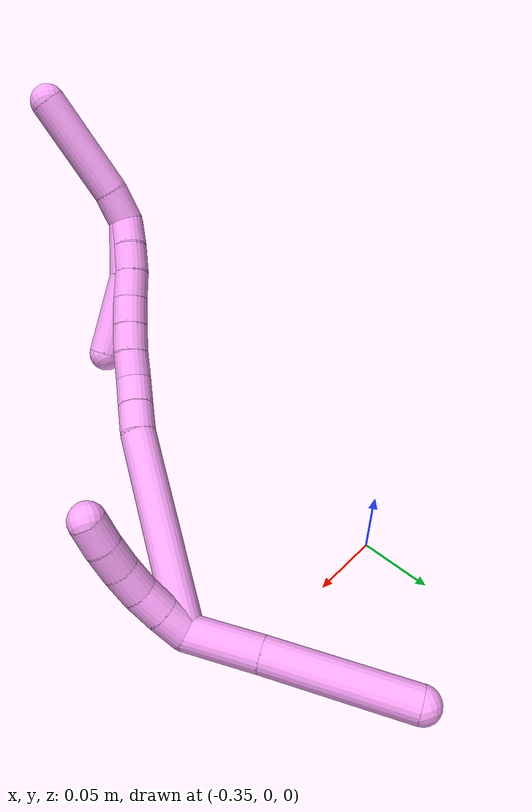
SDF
<sdf version="1.7">
 <world name="default">
  <model name="4">
   <static>0</static>
   <link name="4">
    <collision name="collision-cylinder-e_1_2_8">
     <pose>0.007381 0.019603 -0.013996 -2.19084 0.297329 -0.566277</pose>
     <geometry><cylinder><radius>0.0125</radius><length>0.050385</length></cylinder></geometry>
     <surface>
      <friction><ode><mu>1.16</mu><mu2>1.16</mu2><slip1>0</slip1><slip2>0</slip2></ode></friction>
      <contact><ode><kp>1e+06</kp><kd>1</kd><max_vel>0</max_vel><min_depth>0.001</min_depth></ode></contact>
     </surface>
    </collision>
    <visual name="visual-cylinder-e_1_2_8">
     <pose>0.007381 0.019603 -0.013996 -2.19084 0.297329 -0.566277</pose>
     <geometry><cylinder><radius>0.0125</radius><length>0.050385</length></cylinder></geometry>
     <material><ambient>1 0.65098 0.996078 1</ambient></material>
    </visual>
    <collision name="collision-cylinder-e_2_8_6">
     <pose>0.029604 0.077363 -0.056358 -2.21007 0.302592 -0.588994</pose>
     <geometry><cylinder><radius>0.0125</radius><length>0.099615</length></cylinder></geometry>
     <surface>
      <friction><ode><mu>1.16</mu><mu2>1.16</mu2><slip1>0</slip1><slip2>0</slip2></ode></friction>
      <contact><ode><kp>1e+06</kp><kd>1</kd><max_vel>0</max_vel><min_depth>0.001</min_depth></ode></contact>
     </surface>
    </collision>
    <visual name="visual-cylinder-e_2_8_6">
     <pose>0.029604 0.077363 -0.056358 -2.21007 0.302592 -0.588994</pose>
     <geometry><cylinder><radius>0.0125</radius><length>0.099615</length></cylinder></geometry>
     <material><ambient>1 0.65098 0.996078 1</ambient></material>
    </visual>
    <collision name="collision-cylinder-e_1_2_9">
     <pose>0.002662 -0.005905 0.007619 0.65937 0.269478 0.092704</pose>
     <geometry><cylinder><radius>0.0125</radius><length>0.02</length></cylinder></geometry>
     <surface>
      <friction><ode><mu>1.16</mu><mu2>1.16</mu2><slip1>0</slip1><slip2>0</slip2></ode></friction>
      <contact><ode><kp>1e+06</kp><kd>1</kd><max_vel>0</max_vel><min_depth>0.001</min_depth></ode></contact>
     </surface>
    </collision>
    <visual name="visual-cylinder-e_1_2_9">
     <pose>0.002662 -0.005905 0.007619 0.65937 0.269478 0.092704</pose>
     <geometry><cylinder><radius>0.0125</radius><length>0.02</length></cylinder></geometry>
     <material><ambient>1 0.65098 0.996078 1</ambient></material>
    </visual>
    <collision name="collision-cylinder-e_2_9_10">
     <pose>0.008563 -0.01726 0.022971 0.613894 0.329807 0.105397</pose>
     <geometry><cylinder><radius>0.0125</radius><length>0.02</length></cylinder></geometry>
     <surface>
      <friction><ode><mu>1.16</mu><mu2>1.16</mu2><slip1>0</slip1><slip2>0</slip2></ode></friction>
      <contact><ode><kp>1e+06</kp><kd>1</kd><max_vel>0</max_vel><min_depth>0.001</min_depth></ode></contact>
     </surface>
    </collision>
    <visual name="visual-cylinder-e_2_9_10">
     <pose>0.008563 -0.01726 0.022971 0.613894 0.329807 0.105397</pose>
     <geometry><cylinder><radius>0.0125</radius><length>0.02</length></cylinder></geometry>
     <material><ambient>1 0.65098 0.996078 1</ambient></material>
    </visual>
    <collision name="collision-cylinder-e_3_10_11">
     <pose>0.016467 -0.027207 0.038321 0.533258 0.485359 0.135027</pose>
     <geometry><cylinder><radius>0.0125</radius><length>0.02</length></cylinder></geometry>
     <surface>
      <friction><ode><mu>1.16</mu><mu2>1.16</mu2><slip1>0</slip1><slip2>0</slip2></ode></friction>
      <contact><ode><kp>1e+06</kp><kd>1</kd><max_vel>0</max_vel><min_depth>0.001</min_depth></ode></contact>
     </surface>
    </collision>
    <visual name="visual-cylinder-e_3_10_11">
     <pose>0.016467 -0.027207 0.038321 0.533258 0.485359 0.135027</pose>
     <geometry><cylinder><radius>0.0125</radius><length>0.02</length></cylinder></geometry>
     <material><ambient>1 0.65098 0.996078 1</ambient></material>
    </visual>
    <collision name="collision-cylinder-e_4_11_12">
     <pose>0.026672 -0.03554 0.053327 0.478946 0.587111 0.147346</pose>
     <geometry><cylinder><radius>0.0125</radius><length>0.02</length></cylinder></geometry>
     <surface>
      <friction><ode><mu>1.16</mu><mu2>1.16</mu2><slip1>0</slip1><slip2>0</slip2></ode></friction>
      <contact><ode><kp>1e+06</kp><kd>1</kd><max_vel>0</max_vel><min_depth>0.001</min_depth></ode></contact>
     </surface>
    </collision>
    <visual name="visual-cylinder-e_4_11_12">
     <pose>0.026672 -0.03554 0.053327 0.478946 0.587111 0.147346</pose>
     <geometry><cylinder><radius>0.0125</radius><length>0.02</length></cylinder></geometry>
     <material><ambient>1 0.65098 0.996078 1</ambient></material>
    </visual>
    <collision name="collision-cylinder-e_5_12_5">
     <pose>0.037602 -0.042575 0.068507 0.389477 0.569319 0.115298</pose>
     <geometry><cylinder><radius>0.0125</radius><length>0.02</length></cylinder></geometry>
     <surface>
      <friction><ode><mu>1.16</mu><mu2>1.16</mu2><slip1>0</slip1><slip2>0</slip2></ode></friction>
      <contact><ode><kp>1e+06</kp><kd>1</kd><max_vel>0</max_vel><min_depth>0.001</min_depth></ode></contact>
     </surface>
    </collision>
    <visual name="visual-cylinder-e_5_12_5">
     <pose>0.037602 -0.042575 0.068507 0.389477 0.569319 0.115298</pose>
     <geometry><cylinder><radius>0.0125</radius><length>0.02</length></cylinder></geometry>
     <material><ambient>1 0.65098 0.996078 1</ambient></material>
    </visual>
    <collision name="collision-cylinder-e_1_2_13">
     <pose>-0.002095 0.004055 0.068868 -0.058814 -0.030354 0.000893</pose>
     <geometry><cylinder><radius>0.0125</radius><length>0.138038</length></cylinder></geometry>
     <surface>
      <friction><ode><mu>1.16</mu><mu2>1.16</mu2><slip1>0</slip1><slip2>0</slip2></ode></friction>
      <contact><ode><kp>1e+06</kp><kd>1</kd><max_vel>0</max_vel><min_depth>0.001</min_depth></ode></contact>
     </surface>
    </collision>
    <visual name="visual-cylinder-e_1_2_13">
     <pose>-0.002095 0.004055 0.068868 -0.058814 -0.030354 0.000893</pose>
     <geometry><cylinder><radius>0.0125</radius><length>0.138038</length></cylinder></geometry>
     <material><ambient>1 0.65098 0.996078 1</ambient></material>
    </visual>
    <collision name="collision-cylinder-e_2_13_14">
     <pose>-0.004801 0.010155 0.147811 -0.200278 -0.059403 0.00597</pose>
     <geometry><cylinder><radius>0.0125</radius><length>0.020599</length></cylinder></geometry>
     <surface>
      <friction><ode><mu>1.16</mu><mu2>1.16</mu2><slip1>0</slip1><slip2>0</slip2></ode></friction>
      <contact><ode><kp>1e+06</kp><kd>1</kd><max_vel>0</max_vel><min_depth>0.001</min_depth></ode></contact>
     </surface>
    </collision>
    <visual name="visual-cylinder-e_2_13_14">
     <pose>-0.004801 0.010155 0.147811 -0.200278 -0.059403 0.00597</pose>
     <geometry><cylinder><radius>0.0125</radius><length>0.020599</length></cylinder></geometry>
     <material><ambient>1 0.65098 0.996078 1</ambient></material>
    </visual>
    <collision name="collision-cylinder-e_3_14_15">
     <pose>-0.006322 0.014379 0.167981 -0.212523 -0.087884 0.00938</pose>
     <geometry><cylinder><radius>0.0125</radius><length>0.020732</length></cylinder></geometry>
     <surface>
      <friction><ode><mu>1.16</mu><mu2>1.16</mu2><slip1>0</slip1><slip2>0</slip2></ode></friction>
      <contact><ode><kp>1e+06</kp><kd>1</kd><max_vel>0</max_vel><min_depth>0.001</min_depth></ode></contact>
     </surface>
    </collision>
    <visual name="visual-cylinder-e_3_14_15">
     <pose>-0.006322 0.014379 0.167981 -0.212523 -0.087884 0.00938</pose>
     <geometry><cylinder><radius>0.0125</radius><length>0.020732</length></cylinder></geometry>
     <material><ambient>1 0.65098 0.996078 1</ambient></material>
    </visual>
    <collision name="collision-cylinder-e_4_15_16">
     <pose>-0.005361 0.018109 0.187846 -0.157512 0.18695 -0.014797</pose>
     <geometry><cylinder><radius>0.0125</radius><length>0.020138</length></cylinder></geometry>
     <surface>
      <friction><ode><mu>1.16</mu><mu2>1.16</mu2><slip1>0</slip1><slip2>0</slip2></ode></friction>
      <contact><ode><kp>1e+06</kp><kd>1</kd><max_vel>0</max_vel><min_depth>0.001</min_depth></ode></contact>
     </surface>
    </collision>
    <visual name="visual-cylinder-e_4_15_16">
     <pose>-0.005361 0.018109 0.187846 -0.157512 0.18695 -0.014797</pose>
     <geometry><cylinder><radius>0.0125</radius><length>0.020138</length></cylinder></geometry>
     <material><ambient>1 0.65098 0.996078 1</ambient></material>
    </visual>
    <collision name="collision-cylinder-e_5_16_17">
     <pose>-0.001683 0.021979 0.207245 -0.236238 0.180372 -0.021462</pose>
     <geometry><cylinder><radius>0.0125</radius><length>0.020133</length></cylinder></geometry>
     <surface>
      <friction><ode><mu>1.16</mu><mu2>1.16</mu2><slip1>0</slip1><slip2>0</slip2></ode></friction>
      <contact><ode><kp>1e+06</kp><kd>1</kd><max_vel>0</max_vel><min_depth>0.001</min_depth></ode></contact>
     </surface>
    </collision>
    <visual name="visual-cylinder-e_5_16_17">
     <pose>-0.001683 0.021979 0.207245 -0.236238 0.180372 -0.021462</pose>
     <geometry><cylinder><radius>0.0125</radius><length>0.020133</length></cylinder></geometry>
     <material><ambient>1 0.65098 0.996078 1</ambient></material>
    </visual>
    <collision name="collision-cylinder-e_6_17_18">
     <pose>0.001817 0.026875 0.226461 -0.262778 0.168985 -0.022384</pose>
     <geometry><cylinder><radius>0.0125</radius><length>0.020144</length></cylinder></geometry>
     <surface>
      <friction><ode><mu>1.16</mu><mu2>1.16</mu2><slip1>0</slip1><slip2>0</slip2></ode></friction>
      <contact><ode><kp>1e+06</kp><kd>1</kd><max_vel>0</max_vel><min_depth>0.001</min_depth></ode></contact>
     </surface>
    </collision>
    <visual name="visual-cylinder-e_6_17_18">
     <pose>0.001817 0.026875 0.226461 -0.262778 0.168985 -0.022384</pose>
     <geometry><cylinder><radius>0.0125</radius><length>0.020144</length></cylinder></geometry>
     <material><ambient>1 0.65098 0.996078 1</ambient></material>
    </visual>
    <collision name="collision-cylinder-e_7_18_19">
     <pose>0.006017 0.032327 0.245357 -0.299287 0.251807 -0.038162</pose>
     <geometry><cylinder><radius>0.0125</radius><length>0.020118</length></cylinder></geometry>
     <surface>
      <friction><ode><mu>1.16</mu><mu2>1.16</mu2><slip1>0</slip1><slip2>0</slip2></ode></friction>
      <contact><ode><kp>1e+06</kp><kd>1</kd><max_vel>0</max_vel><min_depth>0.001</min_depth></ode></contact>
     </surface>
    </collision>
    <visual name="visual-cylinder-e_7_18_19">
     <pose>0.006017 0.032327 0.245357 -0.299287 0.251807 -0.038162</pose>
     <geometry><cylinder><radius>0.0125</radius><length>0.020118</length></cylinder></geometry>
     <material><ambient>1 0.65098 0.996078 1</ambient></material>
    </visual>
    <collision name="collision-cylinder-e_8_19_20">
     <pose>0.010698 0.036959 0.264287 -0.180963 0.218822 -0.019932</pose>
     <geometry><cylinder><radius>0.0125</radius><length>0.020039</length></cylinder></geometry>
     <surface>
      <friction><ode><mu>1.16</mu><mu2>1.16</mu2><slip1>0</slip1><slip2>0</slip2></ode></friction>
      <contact><ode><kp>1e+06</kp><kd>1</kd><max_vel>0</max_vel><min_depth>0.001</min_depth></ode></contact>
     </surface>
    </collision>
    <visual name="visual-cylinder-e_8_19_20">
     <pose>0.010698 0.036959 0.264287 -0.180963 0.218822 -0.019932</pose>
     <geometry><cylinder><radius>0.0125</radius><length>0.020039</length></cylinder></geometry>
     <material><ambient>1 0.65098 0.996078 1</ambient></material>
    </visual>
    <collision name="collision-cylinder-e_9_20_1">
     <pose>0.014204 0.040043 0.28376 -0.133483 0.133086 -0.008909</pose>
     <geometry><cylinder><radius>0.0125</radius><length>0.020059</length></cylinder></geometry>
     <surface>
      <friction><ode><mu>1.16</mu><mu2>1.16</mu2><slip1>0</slip1><slip2>0</slip2></ode></friction>
      <contact><ode><kp>1e+06</kp><kd>1</kd><max_vel>0</max_vel><min_depth>0.001</min_depth></ode></contact>
     </surface>
    </collision>
    <visual name="visual-cylinder-e_9_20_1">
     <pose>0.014204 0.040043 0.28376 -0.133483 0.133086 -0.008909</pose>
     <geometry><cylinder><radius>0.0125</radius><length>0.020059</length></cylinder></geometry>
     <material><ambient>1 0.65098 0.996078 1</ambient></material>
    </visual>
    <collision name="collision-cylinder-e_1_1_21">
     <pose>0.00951 0.036835 0.274326 2.91087 -0.295211 -1.81758</pose>
     <geometry><cylinder><radius>0.0125</radius><length>0.041415</length></cylinder></geometry>
     <surface>
      <friction><ode><mu>1.16</mu><mu2>1.16</mu2><slip1>0</slip1><slip2>0</slip2></ode></friction>
      <contact><ode><kp>1e+06</kp><kd>1</kd><max_vel>0</max_vel><min_depth>0.001</min_depth></ode></contact>
     </surface>
    </collision>
    <visual name="visual-cylinder-e_1_1_21">
     <pose>0.00951 0.036835 0.274326 2.91087 -0.295211 -1.81758</pose>
     <geometry><cylinder><radius>0.0125</radius><length>0.041415</length></cylinder></geometry>
     <material><ambient>1 0.65098 0.996078 1</ambient></material>
    </visual>
    <collision name="collision-cylinder-e_2_21_4">
     <pose>-0.0102 0.019301 0.232641 2.6156 -0.486115 -1.48858</pose>
     <geometry><cylinder><radius>0.0125</radius><length>0.058585</length></cylinder></geometry>
     <surface>
      <friction><ode><mu>1.16</mu><mu2>1.16</mu2><slip1>0</slip1><slip2>0</slip2></ode></friction>
      <contact><ode><kp>1e+06</kp><kd>1</kd><max_vel>0</max_vel><min_depth>0.001</min_depth></ode></contact>
     </surface>
    </collision>
    <visual name="visual-cylinder-e_2_21_4">
     <pose>-0.0102 0.019301 0.232641 2.6156 -0.486115 -1.48858</pose>
     <geometry><cylinder><radius>0.0125</radius><length>0.058585</length></cylinder></geometry>
     <material><ambient>1 0.65098 0.996078 1</ambient></material>
    </visual>
    <collision name="collision-cylinder-e_1_1_22">
     <pose>0.021315 0.037953 0.303538 0.331133 0.503406 0.085887</pose>
     <geometry><cylinder><radius>0.0125</radius><length>0.023964</length></cylinder></geometry>
     <surface>
      <friction><ode><mu>1.16</mu><mu2>1.16</mu2><slip1>0</slip1><slip2>0</slip2></ode></friction>
      <contact><ode><kp>1e+06</kp><kd>1</kd><max_vel>0</max_vel><min_depth>0.001</min_depth></ode></contact>
     </surface>
    </collision>
    <visual name="visual-cylinder-e_1_1_22">
     <pose>0.021315 0.037953 0.303538 0.331133 0.503406 0.085887</pose>
     <geometry><cylinder><radius>0.0125</radius><length>0.023964</length></cylinder></geometry>
     <material><ambient>1 0.65098 0.996078 1</ambient></material>
    </visual>
    <collision name="collision-cylinder-e_2_22_3">
     <pose>0.043237 0.018758 0.344053 0.476328 0.438486 0.108086</pose>
     <geometry><cylinder><radius>0.0125</radius><length>0.076036</length></cylinder></geometry>
     <surface>
      <friction><ode><mu>1.16</mu><mu2>1.16</mu2><slip1>0</slip1><slip2>0</slip2></ode></friction>
      <contact><ode><kp>1e+06</kp><kd>1</kd><max_vel>0</max_vel><min_depth>0.001</min_depth></ode></contact>
     </surface>
    </collision>
    <visual name="visual-cylinder-e_2_22_3">
     <pose>0.043237 0.018758 0.344053 0.476328 0.438486 0.108086</pose>
     <geometry><cylinder><radius>0.0125</radius><length>0.076036</length></cylinder></geometry>
     <material><ambient>1 0.65098 0.996078 1</ambient></material>
    </visual>
    <collision name="collision-sphere-3">
     <pose>0.059378 0.002975 0.374643 0 -0 0</pose>
     <geometry><sphere><radius>0.0125</radius></sphere></geometry>
     <surface>
      <friction><ode><mu>1.16</mu><mu2>1.16</mu2><slip1>0</slip1><slip2>0</slip2></ode></friction>
      <contact><ode><kp>1e+06</kp><kd>1</kd><max_vel>0</max_vel><min_depth>0.001</min_depth></ode></contact>
     </surface>
    </collision>
    <visual name="visual-sphere-3">
     <pose>0.059378 0.002975 0.374643 0 -0 0</pose>
     <geometry><sphere><radius>0.0125</radius></sphere></geometry>
     <material><ambient>1 0.65098 0.996078 1</ambient></material>
    </visual>
    <collision name="collision-sphere-22">
     <pose>0.027095 0.034541 0.313463 0 -0 0</pose>
     <geometry><sphere><radius>0.0125</radius></sphere></geometry>
     <surface>
      <friction><ode><mu>1.16</mu><mu2>1.16</mu2><slip1>0</slip1><slip2>0</slip2></ode></friction>
      <contact><ode><kp>1e+06</kp><kd>1</kd><max_vel>0</max_vel><min_depth>0.001</min_depth></ode></contact>
     </surface>
    </collision>
    <visual name="visual-sphere-22">
     <pose>0.027095 0.034541 0.313463 0 -0 0</pose>
     <geometry><sphere><radius>0.0125</radius></sphere></geometry>
     <material><ambient>1 0.65098 0.996078 1</ambient></material>
    </visual>
    <collision name="collision-sphere-4">
     <pose>-0.023885 0.006298 0.210243 0 -0 0</pose>
     <geometry><sphere><radius>0.0125</radius></sphere></geometry>
     <surface>
      <friction><ode><mu>1.16</mu><mu2>1.16</mu2><slip1>0</slip1><slip2>0</slip2></ode></friction>
      <contact><ode><kp>1e+06</kp><kd>1</kd><max_vel>0</max_vel><min_depth>0.001</min_depth></ode></contact>
     </surface>
    </collision>
    <visual name="visual-sphere-4">
     <pose>-0.023885 0.006298 0.210243 0 -0 0</pose>
     <geometry><sphere><radius>0.0125</radius></sphere></geometry>
     <material><ambient>1 0.65098 0.996078 1</ambient></material>
    </visual>
    <collision name="collision-sphere-21">
     <pose>0.003486 0.032305 0.255039 0 -0 0</pose>
     <geometry><sphere><radius>0.0125</radius></sphere></geometry>
     <surface>
      <friction><ode><mu>1.16</mu><mu2>1.16</mu2><slip1>0</slip1><slip2>0</slip2></ode></friction>
      <contact><ode><kp>1e+06</kp><kd>1</kd><max_vel>0</max_vel><min_depth>0.001</min_depth></ode></contact>
     </surface>
    </collision>
    <visual name="visual-sphere-21">
     <pose>0.003486 0.032305 0.255039 0 -0 0</pose>
     <geometry><sphere><radius>0.0125</radius></sphere></geometry>
     <material><ambient>1 0.65098 0.996078 1</ambient></material>
    </visual>
    <collision name="collision-sphere-1">
     <pose>0.015535 0.041366 0.293613 0 -0 0</pose>
     <geometry><sphere><radius>0.0125</radius></sphere></geometry>
     <surface>
      <friction><ode><mu>1.16</mu><mu2>1.16</mu2><slip1>0</slip1><slip2>0</slip2></ode></friction>
      <contact><ode><kp>1e+06</kp><kd>1</kd><max_vel>0</max_vel><min_depth>0.001</min_depth></ode></contact>
     </surface>
    </collision>
    <visual name="visual-sphere-1">
     <pose>0.015535 0.041366 0.293613 0 -0 0</pose>
     <geometry><sphere><radius>0.0125</radius></sphere></geometry>
     <material><ambient>1 0.65098 0.996078 1</ambient></material>
    </visual>
    <collision name="collision-sphere-11">
     <pose>0.021132 -0.031703 0.045938 0 -0 0</pose>
     <geometry><sphere><radius>0.0125</radius></sphere></geometry>
     <surface>
      <friction><ode><mu>1.16</mu><mu2>1.16</mu2><slip1>0</slip1><slip2>0</slip2></ode></friction>
      <contact><ode><kp>1e+06</kp><kd>1</kd><max_vel>0</max_vel><min_depth>0.001</min_depth></ode></contact>
     </surface>
    </collision>
    <visual name="visual-sphere-11">
     <pose>0.021132 -0.031703 0.045938 0 -0 0</pose>
     <geometry><sphere><radius>0.0125</radius></sphere></geometry>
     <material><ambient>1 0.65098 0.996078 1</ambient></material>
    </visual>
    <collision name="collision-sphere-10">
     <pose>0.011802 -0.02271 0.030704 0 -0 0</pose>
     <geometry><sphere><radius>0.0125</radius></sphere></geometry>
     <surface>
      <friction><ode><mu>1.16</mu><mu2>1.16</mu2><slip1>0</slip1><slip2>0</slip2></ode></friction>
      <contact><ode><kp>1e+06</kp><kd>1</kd><max_vel>0</max_vel><min_depth>0.001</min_depth></ode></contact>
     </surface>
    </collision>
    <visual name="visual-sphere-10">
     <pose>0.011802 -0.02271 0.030704 0 -0 0</pose>
     <geometry><sphere><radius>0.0125</radius></sphere></geometry>
     <material><ambient>1 0.65098 0.996078 1</ambient></material>
    </visual>
    <collision name="collision-sphere-6">
     <pose>0.044446 0.115519 -0.084724 0 -0 0</pose>
     <geometry><sphere><radius>0.0125</radius></sphere></geometry>
     <surface>
      <friction><ode><mu>1.16</mu><mu2>1.16</mu2><slip1>0</slip1><slip2>0</slip2></ode></friction>
      <contact><ode><kp>1e+06</kp><kd>1</kd><max_vel>0</max_vel><min_depth>0.001</min_depth></ode></contact>
     </surface>
    </collision>
    <visual name="visual-sphere-6">
     <pose>0.044446 0.115519 -0.084724 0 -0 0</pose>
     <geometry><sphere><radius>0.0125</radius></sphere></geometry>
     <material><ambient>1 0.65098 0.996078 1</ambient></material>
    </visual>
    <collision name="collision-sphere-9">
     <pose>0.005325 -0.01181 0.015237 0 -0 0</pose>
     <geometry><sphere><radius>0.0125</radius></sphere></geometry>
     <surface>
      <friction><ode><mu>1.16</mu><mu2>1.16</mu2><slip1>0</slip1><slip2>0</slip2></ode></friction>
      <contact><ode><kp>1e+06</kp><kd>1</kd><max_vel>0</max_vel><min_depth>0.001</min_depth></ode></contact>
     </surface>
    </collision>
    <visual name="visual-sphere-9">
     <pose>0.005325 -0.01181 0.015237 0 -0 0</pose>
     <geometry><sphere><radius>0.0125</radius></sphere></geometry>
     <material><ambient>1 0.65098 0.996078 1</ambient></material>
    </visual>
    <collision name="collision-sphere-2">
     <geometry><sphere><radius>0.0125</radius></sphere></geometry>
     <surface>
      <friction><ode><mu>1.16</mu><mu2>1.16</mu2><slip1>0</slip1><slip2>0</slip2></ode></friction>
      <contact><ode><kp>1e+06</kp><kd>1</kd><max_vel>0</max_vel><min_depth>0.001</min_depth></ode></contact>
     </surface>
    </collision>
    <visual name="visual-sphere-2">
     <geometry><sphere><radius>0.0125</radius></sphere></geometry>
     <material><ambient>1 0.65098 0.996078 1</ambient></material>
    </visual>
    <collision name="collision-sphere-19">
     <pose>0.008523 0.035199 0.254666 0 -0 0</pose>
     <geometry><sphere><radius>0.0125</radius></sphere></geometry>
     <surface>
      <friction><ode><mu>1.16</mu><mu2>1.16</mu2><slip1>0</slip1><slip2>0</slip2></ode></friction>
      <contact><ode><kp>1e+06</kp><kd>1</kd><max_vel>0</max_vel><min_depth>0.001</min_depth></ode></contact>
     </surface>
    </collision>
    <visual name="visual-sphere-19">
     <pose>0.008523 0.035199 0.254666 0 -0 0</pose>
     <geometry><sphere><radius>0.0125</radius></sphere></geometry>
     <material><ambient>1 0.65098 0.996078 1</ambient></material>
    </visual>
    <collision name="collision-sphere-8">
     <pose>0.014761 0.039207 -0.027992 0 -0 0</pose>
     <geometry><sphere><radius>0.0125</radius></sphere></geometry>
     <surface>
      <friction><ode><mu>1.16</mu><mu2>1.16</mu2><slip1>0</slip1><slip2>0</slip2></ode></friction>
      <contact><ode><kp>1e+06</kp><kd>1</kd><max_vel>0</max_vel><min_depth>0.001</min_depth></ode></contact>
     </surface>
    </collision>
    <visual name="visual-sphere-8">
     <pose>0.014761 0.039207 -0.027992 0 -0 0</pose>
     <geometry><sphere><radius>0.0125</radius></sphere></geometry>
     <material><ambient>1 0.65098 0.996078 1</ambient></material>
    </visual>
    <collision name="collision-sphere-12">
     <pose>0.032211 -0.039376 0.060716 0 -0 0</pose>
     <geometry><sphere><radius>0.0125</radius></sphere></geometry>
     <surface>
      <friction><ode><mu>1.16</mu><mu2>1.16</mu2><slip1>0</slip1><slip2>0</slip2></ode></friction>
      <contact><ode><kp>1e+06</kp><kd>1</kd><max_vel>0</max_vel><min_depth>0.001</min_depth></ode></contact>
     </surface>
    </collision>
    <visual name="visual-sphere-12">
     <pose>0.032211 -0.039376 0.060716 0 -0 0</pose>
     <geometry><sphere><radius>0.0125</radius></sphere></geometry>
     <material><ambient>1 0.65098 0.996078 1</ambient></material>
    </visual>
    <collision name="collision-sphere-5">
     <pose>0.042993 -0.045773 0.076299 0 -0 0</pose>
     <geometry><sphere><radius>0.0125</radius></sphere></geometry>
     <surface>
      <friction><ode><mu>1.16</mu><mu2>1.16</mu2><slip1>0</slip1><slip2>0</slip2></ode></friction>
      <contact><ode><kp>1e+06</kp><kd>1</kd><max_vel>0</max_vel><min_depth>0.001</min_depth></ode></contact>
     </surface>
    </collision>
    <visual name="visual-sphere-5">
     <pose>0.042993 -0.045773 0.076299 0 -0 0</pose>
     <geometry><sphere><radius>0.0125</radius></sphere></geometry>
     <material><ambient>1 0.65098 0.996078 1</ambient></material>
    </visual>
    <collision name="collision-sphere-13">
     <pose>-0.004189 0.00811 0.137736 0 -0 0</pose>
     <geometry><sphere><radius>0.0125</radius></sphere></geometry>
     <surface>
      <friction><ode><mu>1.16</mu><mu2>1.16</mu2><slip1>0</slip1><slip2>0</slip2></ode></friction>
      <contact><ode><kp>1e+06</kp><kd>1</kd><max_vel>0</max_vel><min_depth>0.001</min_depth></ode></contact>
     </surface>
    </collision>
    <visual name="visual-sphere-13">
     <pose>-0.004189 0.00811 0.137736 0 -0 0</pose>
     <geometry><sphere><radius>0.0125</radius></sphere></geometry>
     <material><ambient>1 0.65098 0.996078 1</ambient></material>
    </visual>
    <collision name="collision-sphere-14">
     <pose>-0.005412 0.012201 0.157887 0 -0 0</pose>
     <geometry><sphere><radius>0.0125</radius></sphere></geometry>
     <surface>
      <friction><ode><mu>1.16</mu><mu2>1.16</mu2><slip1>0</slip1><slip2>0</slip2></ode></friction>
      <contact><ode><kp>1e+06</kp><kd>1</kd><max_vel>0</max_vel><min_depth>0.001</min_depth></ode></contact>
     </surface>
    </collision>
    <visual name="visual-sphere-14">
     <pose>-0.005412 0.012201 0.157887 0 -0 0</pose>
     <geometry><sphere><radius>0.0125</radius></sphere></geometry>
     <material><ambient>1 0.65098 0.996078 1</ambient></material>
    </visual>
    <collision name="collision-sphere-15">
     <pose>-0.007232 0.016557 0.178075 0 -0 0</pose>
     <geometry><sphere><radius>0.0125</radius></sphere></geometry>
     <surface>
      <friction><ode><mu>1.16</mu><mu2>1.16</mu2><slip1>0</slip1><slip2>0</slip2></ode></friction>
      <contact><ode><kp>1e+06</kp><kd>1</kd><max_vel>0</max_vel><min_depth>0.001</min_depth></ode></contact>
     </surface>
    </collision>
    <visual name="visual-sphere-15">
     <pose>-0.007232 0.016557 0.178075 0 -0 0</pose>
     <geometry><sphere><radius>0.0125</radius></sphere></geometry>
     <material><ambient>1 0.65098 0.996078 1</ambient></material>
    </visual>
    <collision name="collision-sphere-16">
     <pose>-0.003489 0.019661 0.197616 0 -0 0</pose>
     <geometry><sphere><radius>0.0125</radius></sphere></geometry>
     <surface>
      <friction><ode><mu>1.16</mu><mu2>1.16</mu2><slip1>0</slip1><slip2>0</slip2></ode></friction>
      <contact><ode><kp>1e+06</kp><kd>1</kd><max_vel>0</max_vel><min_depth>0.001</min_depth></ode></contact>
     </surface>
    </collision>
    <visual name="visual-sphere-16">
     <pose>-0.003489 0.019661 0.197616 0 -0 0</pose>
     <geometry><sphere><radius>0.0125</radius></sphere></geometry>
     <material><ambient>1 0.65098 0.996078 1</ambient></material>
    </visual>
    <collision name="collision-sphere-17">
     <pose>0.000123 0.024296 0.216873 0 -0 0</pose>
     <geometry><sphere><radius>0.0125</radius></sphere></geometry>
     <surface>
      <friction><ode><mu>1.16</mu><mu2>1.16</mu2><slip1>0</slip1><slip2>0</slip2></ode></friction>
      <contact><ode><kp>1e+06</kp><kd>1</kd><max_vel>0</max_vel><min_depth>0.001</min_depth></ode></contact>
     </surface>
    </collision>
    <visual name="visual-sphere-17">
     <pose>0.000123 0.024296 0.216873 0 -0 0</pose>
     <geometry><sphere><radius>0.0125</radius></sphere></geometry>
     <material><ambient>1 0.65098 0.996078 1</ambient></material>
    </visual>
    <collision name="collision-sphere-18">
     <pose>0.003511 0.029455 0.236048 0 -0 0</pose>
     <geometry><sphere><radius>0.0125</radius></sphere></geometry>
     <surface>
      <friction><ode><mu>1.16</mu><mu2>1.16</mu2><slip1>0</slip1><slip2>0</slip2></ode></friction>
      <contact><ode><kp>1e+06</kp><kd>1</kd><max_vel>0</max_vel><min_depth>0.001</min_depth></ode></contact>
     </surface>
    </collision>
    <visual name="visual-sphere-18">
     <pose>0.003511 0.029455 0.236048 0 -0 0</pose>
     <geometry><sphere><radius>0.0125</radius></sphere></geometry>
     <material><ambient>1 0.65098 0.996078 1</ambient></material>
    </visual>
    <collision name="collision-sphere-20">
     <pose>0.012873 0.03872 0.273908 0 -0 0</pose>
     <geometry><sphere><radius>0.0125</radius></sphere></geometry>
     <surface>
      <friction><ode><mu>1.16</mu><mu2>1.16</mu2><slip1>0</slip1><slip2>0</slip2></ode></friction>
      <contact><ode><kp>1e+06</kp><kd>1</kd><max_vel>0</max_vel><min_depth>0.001</min_depth></ode></contact>
     </surface>
    </collision>
    <visual name="visual-sphere-20">
     <pose>0.012873 0.03872 0.273908 0 -0 0</pose>
     <geometry><sphere><radius>0.0125</radius></sphere></geometry>
     <material><ambient>1 0.65098 0.996078 1</ambient></material>
    </visual>
    <inertial>
     <pose>0.011668 0.020969 0.133861 0 -0 0</pose>
     <mass>0.75</mass>
     <inertia>
      <ixx>0.000296</ixx>
      <ixy>0</ixy>
      <ixz>0</ixz>
      <iyy>0.000181</iyy>
      <iyz>0</iyz>
      <izz>-7.3e-05</izz>
     </inertia>
    </inertial>
   </link>
   <pose>-0.207004 -0.037257 0.012254 -0.056745 -1.10958 1.17492</pose>
  </model>
 </world>
</sdf>
